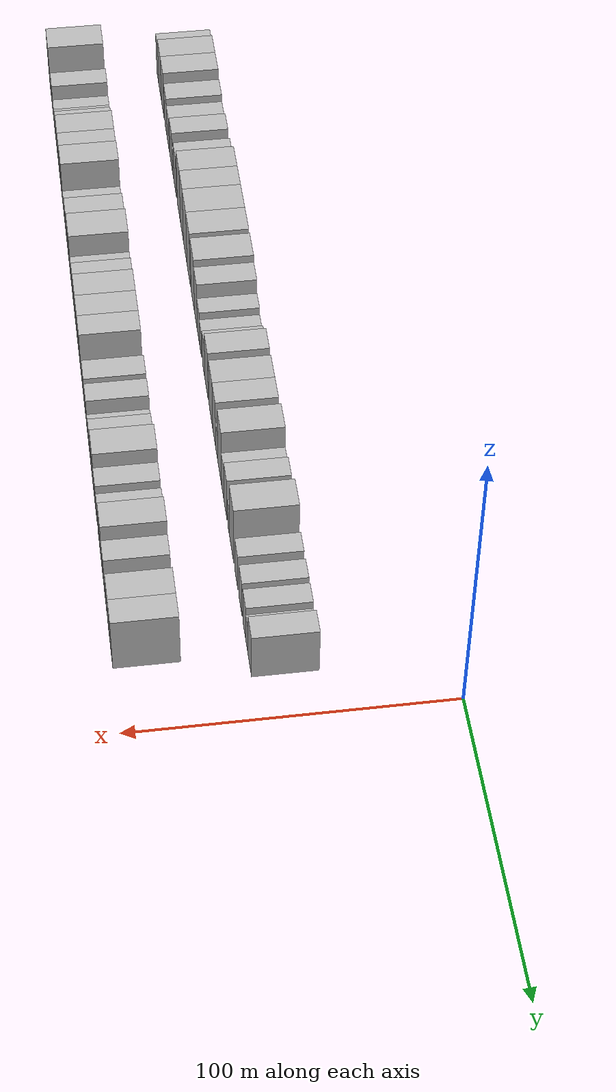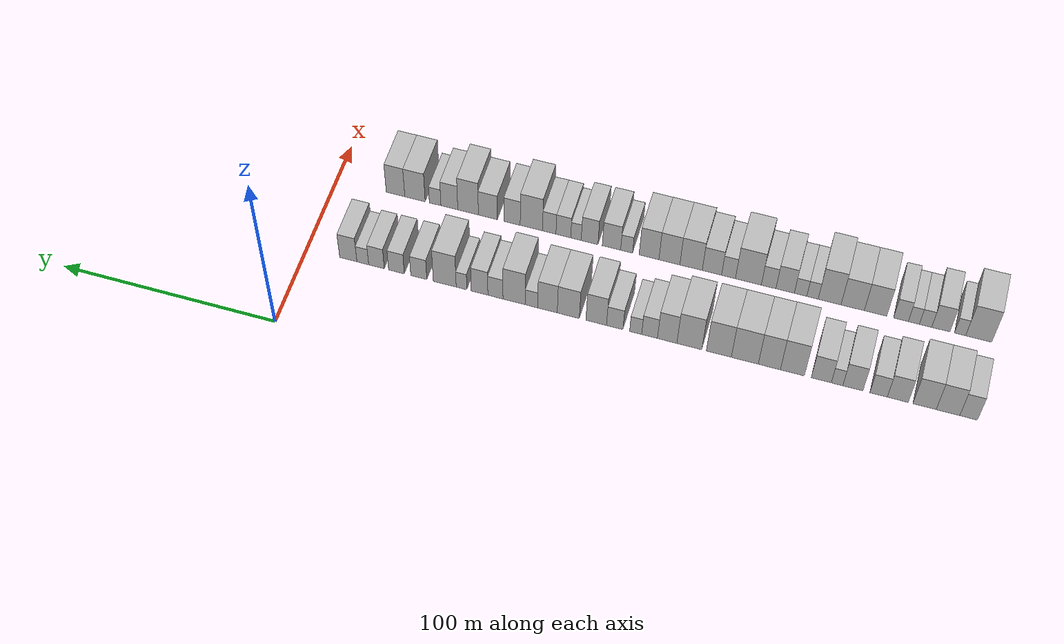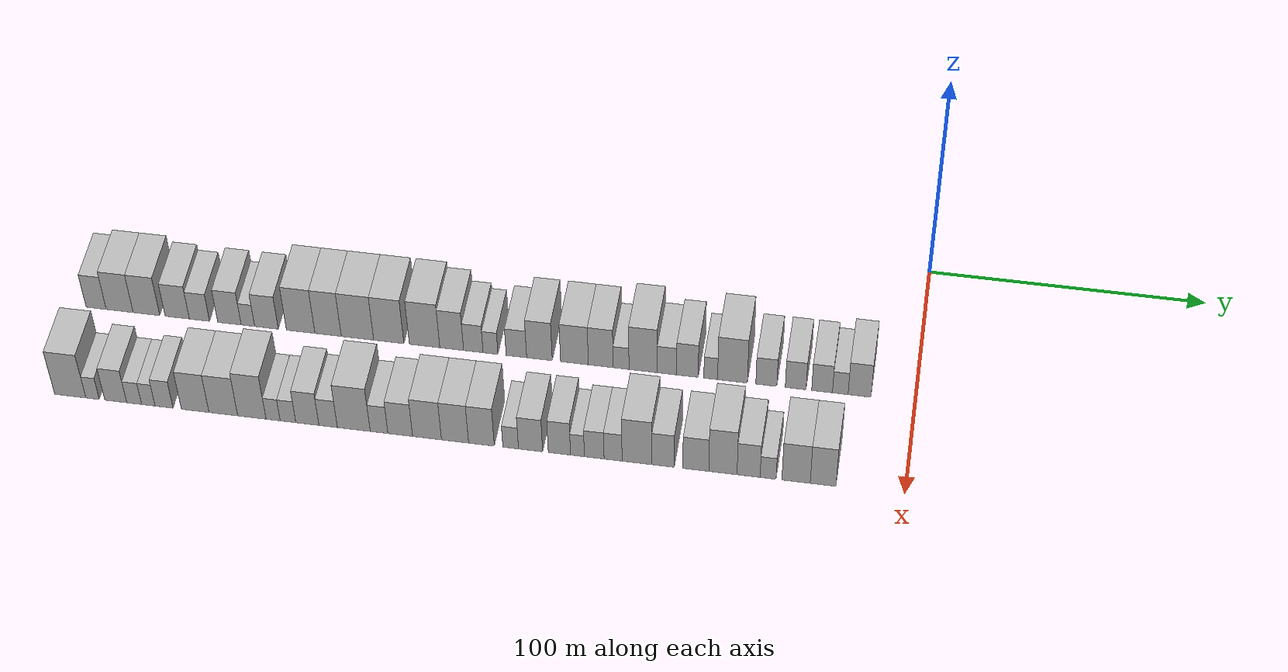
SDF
<sdf version="1.6">
 <world name="default">
  <model name="building_1">
   <static>1</static>
   <pose>50.0000 -296.2681 0 0.000000 0.000000 0.000000</pose>
   <link name="link">
    <pose>0 0 9.00 0 0 0</pose>
    <collision name="collision"><geometry><box><size>20.0000 7.4637 18.0000</size></box></geometry></collision>
    <visual name="visual">
     <cast_shadows>0</cast_shadows>
     <geometry><box><size>20.0000 7.4637 18.0000</size></box></geometry>
     <material>
      <script>
       <uri>model://HANNAS_wall/materials/scripts</uri>
       <uri>model://HANNAS_wall/materials/textures</uri>
       <name>vrc/HANNAS_wall</name>
      </script>
     </material>
    </visual>
   </link>
  </model>
  <model name="building_2">
   <static>1</static>
   <pose>50.0000 -287.5486 0 0.000000 0.000000 0.000000</pose>
   <link name="link">
    <pose>0 0 10.50 0 0 0</pose>
    <collision name="collision"><geometry><box><size>20.0000 9.9753 21.0000</size></box></geometry></collision>
    <visual name="visual">
     <cast_shadows>0</cast_shadows>
     <geometry><box><size>20.0000 9.9753 21.0000</size></box></geometry>
     <material>
      <script>
       <uri>model://HANNAS_wall/materials/scripts</uri>
       <uri>model://HANNAS_wall/materials/textures</uri>
       <name>vrc/HANNAS_wall</name>
      </script>
     </material>
    </visual>
   </link>
  </model>
  <model name="building_3">
   <static>1</static>
   <pose>50.0000 -277.6109 0 0.000000 0.000000 0.000000</pose>
   <link name="link">
    <pose>0 0 10.50 0 0 0</pose>
    <collision name="collision"><geometry><box><size>20.0000 9.9003 21.0000</size></box></geometry></collision>
    <visual name="visual">
     <cast_shadows>0</cast_shadows>
     <geometry><box><size>20.0000 9.9003 21.0000</size></box></geometry>
     <material>
      <script>
       <uri>model://HANNAS_wall/materials/scripts</uri>
       <uri>model://HANNAS_wall/materials/textures</uri>
       <name>vrc/HANNAS_wall</name>
      </script>
     </material>
    </visual>
   </link>
  </model>
  <model name="building_4">
   <static>1</static>
   <pose>50.0000 -266.2000 0 0.000000 0.000000 0.000000</pose>
   <link name="link">
    <pose>0 0 9.00 0 0 0</pose>
    <collision name="collision"><geometry><box><size>20.0000 8.9215 18.0000</size></box></geometry></collision>
    <visual name="visual">
     <cast_shadows>0</cast_shadows>
     <geometry><box><size>20.0000 8.9215 18.0000</size></box></geometry>
     <material>
      <script>
       <uri>model://HANNAS_wall/materials/scripts</uri>
       <uri>model://HANNAS_wall/materials/textures</uri>
       <name>vrc/HANNAS_wall</name>
      </script>
     </material>
    </visual>
   </link>
  </model>
  <model name="building_5">
   <static>1</static>
   <pose>50.0000 -258.0020 0 0.000000 0.000000 0.000000</pose>
   <link name="link">
    <pose>0 0 7.50 0 0 0</pose>
    <collision name="collision"><geometry><box><size>20.0000 7.4744 15.0000</size></box></geometry></collision>
    <visual name="visual">
     <cast_shadows>0</cast_shadows>
     <geometry><box><size>20.0000 7.4744 15.0000</size></box></geometry>
     <material>
      <script>
       <uri>model://HANNAS_wall/materials/scripts</uri>
       <uri>model://HANNAS_wall/materials/textures</uri>
       <name>vrc/HANNAS_wall</name>
      </script>
     </material>
    </visual>
   </link>
  </model>
  <model name="building_6">
   <static>1</static>
   <pose>50.0000 -246.9356 0 0.000000 0.000000 0.000000</pose>
   <link name="link">
    <pose>0 0 9.00 0 0 0</pose>
    <collision name="collision"><geometry><box><size>20.0000 8.6585 18.0000</size></box></geometry></collision>
    <visual name="visual">
     <cast_shadows>0</cast_shadows>
     <geometry><box><size>20.0000 8.6585 18.0000</size></box></geometry>
     <material>
      <script>
       <uri>model://HANNAS_wall/materials/scripts</uri>
       <uri>model://HANNAS_wall/materials/textures</uri>
       <name>vrc/HANNAS_wall</name>
      </script>
     </material>
    </visual>
   </link>
  </model>
  <model name="building_7">
   <static>1</static>
   <pose>50.0000 -240.1300 0 0.000000 0.000000 0.000000</pose>
   <link name="link">
    <pose>0 0 6.00 0 0 0</pose>
    <collision name="collision"><geometry><box><size>20.0000 4.9528 12.0000</size></box></geometry></collision>
    <visual name="visual">
     <cast_shadows>0</cast_shadows>
     <geometry><box><size>20.0000 4.9528 12.0000</size></box></geometry>
     <material>
      <script>
       <uri>model://HANNAS_wall/materials/scripts</uri>
       <uri>model://HANNAS_wall/materials/textures</uri>
       <name>vrc/HANNAS_wall</name>
      </script>
     </material>
    </visual>
   </link>
  </model>
  <model name="building_8">
   <static>1</static>
   <pose>50.0000 -233.3050 0 0.000000 0.000000 0.000000</pose>
   <link name="link">
    <pose>0 0 9.00 0 0 0</pose>
    <collision name="collision"><geometry><box><size>20.0000 8.6971 18.0000</size></box></geometry></collision>
    <visual name="visual">
     <cast_shadows>0</cast_shadows>
     <geometry><box><size>20.0000 8.6971 18.0000</size></box></geometry>
     <material>
      <script>
       <uri>model://HANNAS_wall/materials/scripts</uri>
       <uri>model://HANNAS_wall/materials/textures</uri>
       <name>vrc/HANNAS_wall</name>
      </script>
     </material>
    </visual>
   </link>
  </model>
  <model name="building_9">
   <static>1</static>
   <pose>50.0000 -220.7380 0 0.000000 0.000000 0.000000</pose>
   <link name="link">
    <pose>0 0 12.00 0 0 0</pose>
    <collision name="collision"><geometry><box><size>20.0000 10.4370 24.0000</size></box></geometry></collision>
    <visual name="visual">
     <cast_shadows>0</cast_shadows>
     <geometry><box><size>20.0000 10.4370 24.0000</size></box></geometry>
     <material>
      <script>
       <uri>model://HANNAS_wall/materials/scripts</uri>
       <uri>model://HANNAS_wall/materials/textures</uri>
       <name>vrc/HANNAS_wall</name>
      </script>
     </material>
    </visual>
   </link>
  </model>
  <model name="building_10">
   <static>1</static>
   <pose>50.0000 -210.6921 0 0.000000 0.000000 0.000000</pose>
   <link name="link">
    <pose>0 0 12.00 0 0 0</pose>
    <collision name="collision"><geometry><box><size>20.0000 9.6547 24.0000</size></box></geometry></collision>
    <visual name="visual">
     <cast_shadows>0</cast_shadows>
     <geometry><box><size>20.0000 9.6547 24.0000</size></box></geometry>
     <material>
      <script>
       <uri>model://HANNAS_wall/materials/scripts</uri>
       <uri>model://HANNAS_wall/materials/textures</uri>
       <name>vrc/HANNAS_wall</name>
      </script>
     </material>
    </visual>
   </link>
  </model>
  <model name="building_11">
   <static>1</static>
   <pose>50.0000 -199.9484 0 0.000000 0.000000 0.000000</pose>
   <link name="link">
    <pose>0 0 12.00 0 0 0</pose>
    <collision name="collision"><geometry><box><size>20.0000 11.8328 24.0000</size></box></geometry></collision>
    <visual name="visual">
     <cast_shadows>0</cast_shadows>
     <geometry><box><size>20.0000 11.8328 24.0000</size></box></geometry>
     <material>
      <script>
       <uri>model://HANNAS_wall/materials/scripts</uri>
       <uri>model://HANNAS_wall/materials/textures</uri>
       <name>vrc/HANNAS_wall</name>
      </script>
     </material>
    </visual>
   </link>
  </model>
  <model name="building_12">
   <static>1</static>
   <pose>50.0000 -188.5231 0 0.000000 0.000000 0.000000</pose>
   <link name="link">
    <pose>0 0 12.00 0 0 0</pose>
    <collision name="collision"><geometry><box><size>20.0000 11.0177 24.0000</size></box></geometry></collision>
    <visual name="visual">
     <cast_shadows>0</cast_shadows>
     <geometry><box><size>20.0000 11.0177 24.0000</size></box></geometry>
     <material>
      <script>
       <uri>model://HANNAS_wall/materials/scripts</uri>
       <uri>model://HANNAS_wall/materials/textures</uri>
       <name>vrc/HANNAS_wall</name>
      </script>
     </material>
    </visual>
   </link>
  </model>
  <model name="building_13">
   <static>1</static>
   <pose>50.0000 -175.4865 0 0.000000 0.000000 0.000000</pose>
   <link name="link">
    <pose>0 0 12.00 0 0 0</pose>
    <collision name="collision"><geometry><box><size>20.0000 11.0557 24.0000</size></box></geometry></collision>
    <visual name="visual">
     <cast_shadows>0</cast_shadows>
     <geometry><box><size>20.0000 11.0557 24.0000</size></box></geometry>
     <material>
      <script>
       <uri>model://HANNAS_wall/materials/scripts</uri>
       <uri>model://HANNAS_wall/materials/textures</uri>
       <name>vrc/HANNAS_wall</name>
      </script>
     </material>
    </visual>
   </link>
  </model>
  <model name="building_14">
   <static>1</static>
   <pose>50.0000 -165.6355 0 0.000000 0.000000 0.000000</pose>
   <link name="link">
    <pose>0 0 10.50 0 0 0</pose>
    <collision name="collision"><geometry><box><size>20.0000 8.6461 21.0000</size></box></geometry></collision>
    <visual name="visual">
     <cast_shadows>0</cast_shadows>
     <geometry><box><size>20.0000 8.6461 21.0000</size></box></geometry>
     <material>
      <script>
       <uri>model://HANNAS_wall/materials/scripts</uri>
       <uri>model://HANNAS_wall/materials/textures</uri>
       <name>vrc/HANNAS_wall</name>
      </script>
     </material>
    </visual>
   </link>
  </model>
  <model name="building_15">
   <static>1</static>
   <pose>50.0000 -157.7900 0 0.000000 0.000000 0.000000</pose>
   <link name="link">
    <pose>0 0 7.50 0 0 0</pose>
    <collision name="collision"><geometry><box><size>20.0000 7.0449 15.0000</size></box></geometry></collision>
    <visual name="visual">
     <cast_shadows>0</cast_shadows>
     <geometry><box><size>20.0000 7.0449 15.0000</size></box></geometry>
     <material>
      <script>
       <uri>model://HANNAS_wall/materials/scripts</uri>
       <uri>model://HANNAS_wall/materials/textures</uri>
       <name>vrc/HANNAS_wall</name>
      </script>
     </material>
    </visual>
   </link>
  </model>
  <model name="building_16">
   <static>1</static>
   <pose>50.0000 -151.5792 0 0.000000 0.000000 0.000000</pose>
   <link name="link">
    <pose>0 0 6.00 0 0 0</pose>
    <collision name="collision"><geometry><box><size>20.0000 5.3768 12.0000</size></box></geometry></collision>
    <visual name="visual">
     <cast_shadows>0</cast_shadows>
     <geometry><box><size>20.0000 5.3768 12.0000</size></box></geometry>
     <material>
      <script>
       <uri>model://HANNAS_wall/materials/scripts</uri>
       <uri>model://HANNAS_wall/materials/textures</uri>
       <name>vrc/HANNAS_wall</name>
      </script>
     </material>
    </visual>
   </link>
  </model>
  <model name="building_17">
   <static>1</static>
   <pose>50.0000 -142.1929 0 0.000000 0.000000 0.000000</pose>
   <link name="link">
    <pose>0 0 7.50 0 0 0</pose>
    <collision name="collision"><geometry><box><size>20.0000 7.3958 15.0000</size></box></geometry></collision>
    <visual name="visual">
     <cast_shadows>0</cast_shadows>
     <geometry><box><size>20.0000 7.3958 15.0000</size></box></geometry>
     <material>
      <script>
       <uri>model://HANNAS_wall/materials/scripts</uri>
       <uri>model://HANNAS_wall/materials/textures</uri>
       <name>vrc/HANNAS_wall</name>
      </script>
     </material>
    </visual>
   </link>
  </model>
  <model name="building_18">
   <static>1</static>
   <pose>50.0000 -133.8683 0 0.000000 0.000000 0.000000</pose>
   <link name="link">
    <pose>0 0 10.50 0 0 0</pose>
    <collision name="collision"><geometry><box><size>20.0000 9.2536 21.0000</size></box></geometry></collision>
    <visual name="visual">
     <cast_shadows>0</cast_shadows>
     <geometry><box><size>20.0000 9.2536 21.0000</size></box></geometry>
     <material>
      <script>
       <uri>model://HANNAS_wall/materials/scripts</uri>
       <uri>model://HANNAS_wall/materials/textures</uri>
       <name>vrc/HANNAS_wall</name>
      </script>
     </material>
    </visual>
   </link>
  </model>
  <model name="building_19">
   <static>1</static>
   <pose>50.0000 -121.2413 0 0.000000 0.000000 0.000000</pose>
   <link name="link">
    <pose>0 0 10.50 0 0 0</pose>
    <collision name="collision"><geometry><box><size>20.0000 10.0004 21.0000</size></box></geometry></collision>
    <visual name="visual">
     <cast_shadows>0</cast_shadows>
     <geometry><box><size>20.0000 10.0004 21.0000</size></box></geometry>
     <material>
      <script>
       <uri>model://HANNAS_wall/materials/scripts</uri>
       <uri>model://HANNAS_wall/materials/textures</uri>
       <name>vrc/HANNAS_wall</name>
      </script>
     </material>
    </visual>
   </link>
  </model>
  <model name="building_20">
   <static>1</static>
   <pose>50.0000 -111.7698 0 0.000000 0.000000 0.000000</pose>
   <link name="link">
    <pose>0 0 10.50 0 0 0</pose>
    <collision name="collision"><geometry><box><size>20.0000 8.9425 21.0000</size></box></geometry></collision>
    <visual name="visual">
     <cast_shadows>0</cast_shadows>
     <geometry><box><size>20.0000 8.9425 21.0000</size></box></geometry>
     <material>
      <script>
       <uri>model://HANNAS_wall/materials/scripts</uri>
       <uri>model://HANNAS_wall/materials/textures</uri>
       <name>vrc/HANNAS_wall</name>
      </script>
     </material>
    </visual>
   </link>
  </model>
  <model name="building_21">
   <static>1</static>
   <pose>50.0000 -104.4695 0 0.000000 0.000000 0.000000</pose>
   <link name="link">
    <pose>0 0 6.00 0 0 0</pose>
    <collision name="collision"><geometry><box><size>20.0000 5.6582 12.0000</size></box></geometry></collision>
    <visual name="visual">
     <cast_shadows>0</cast_shadows>
     <geometry><box><size>20.0000 5.6582 12.0000</size></box></geometry>
     <material>
      <script>
       <uri>model://HANNAS_wall/materials/scripts</uri>
       <uri>model://HANNAS_wall/materials/textures</uri>
       <name>vrc/HANNAS_wall</name>
      </script>
     </material>
    </visual>
   </link>
  </model>
  <model name="building_22">
   <static>1</static>
   <pose>50.0000 -96.5755 0 0.000000 0.000000 0.000000</pose>
   <link name="link">
    <pose>0 0 12.00 0 0 0</pose>
    <collision name="collision"><geometry><box><size>20.0000 10.1298 24.0000</size></box></geometry></collision>
    <visual name="visual">
     <cast_shadows>0</cast_shadows>
     <geometry><box><size>20.0000 10.1298 24.0000</size></box></geometry>
     <material>
      <script>
       <uri>model://HANNAS_wall/materials/scripts</uri>
       <uri>model://HANNAS_wall/materials/textures</uri>
       <name>vrc/HANNAS_wall</name>
      </script>
     </material>
    </visual>
   </link>
  </model>
  <model name="building_23">
   <static>1</static>
   <pose>50.0000 -88.0419 0 0.000000 0.000000 0.000000</pose>
   <link name="link">
    <pose>0 0 7.50 0 0 0</pose>
    <collision name="collision"><geometry><box><size>20.0000 6.9375 15.0000</size></box></geometry></collision>
    <visual name="visual">
     <cast_shadows>0</cast_shadows>
     <geometry><box><size>20.0000 6.9375 15.0000</size></box></geometry>
     <material>
      <script>
       <uri>model://HANNAS_wall/materials/scripts</uri>
       <uri>model://HANNAS_wall/materials/textures</uri>
       <name>vrc/HANNAS_wall</name>
      </script>
     </material>
    </visual>
   </link>
  </model>
  <model name="building_24">
   <static>1</static>
   <pose>50.0000 -80.7209 0 0.000000 0.000000 0.000000</pose>
   <link name="link">
    <pose>0 0 9.00 0 0 0</pose>
    <collision name="collision"><geometry><box><size>20.0000 7.7043 18.0000</size></box></geometry></collision>
    <visual name="visual">
     <cast_shadows>0</cast_shadows>
     <geometry><box><size>20.0000 7.7043 18.0000</size></box></geometry>
     <material>
      <script>
       <uri>model://HANNAS_wall/materials/scripts</uri>
       <uri>model://HANNAS_wall/materials/textures</uri>
       <name>vrc/HANNAS_wall</name>
      </script>
     </material>
    </visual>
   </link>
  </model>
  <model name="building_25">
   <static>1</static>
   <pose>50.0000 -72.4172 0 0.000000 0.000000 0.000000</pose>
   <link name="link">
    <pose>0 0 6.00 0 0 0</pose>
    <collision name="collision"><geometry><box><size>20.0000 4.9032 12.0000</size></box></geometry></collision>
    <visual name="visual">
     <cast_shadows>0</cast_shadows>
     <geometry><box><size>20.0000 4.9032 12.0000</size></box></geometry>
     <material>
      <script>
       <uri>model://HANNAS_wall/materials/scripts</uri>
       <uri>model://HANNAS_wall/materials/textures</uri>
       <name>vrc/HANNAS_wall</name>
      </script>
     </material>
    </visual>
   </link>
  </model>
  <model name="building_26">
   <static>1</static>
   <pose>50.0000 -64.6622 0 0.000000 0.000000 0.000000</pose>
   <link name="link">
    <pose>0 0 12.00 0 0 0</pose>
    <collision name="collision"><geometry><box><size>20.0000 10.6067 24.0000</size></box></geometry></collision>
    <visual name="visual">
     <cast_shadows>0</cast_shadows>
     <geometry><box><size>20.0000 10.6067 24.0000</size></box></geometry>
     <material>
      <script>
       <uri>model://HANNAS_wall/materials/scripts</uri>
       <uri>model://HANNAS_wall/materials/textures</uri>
       <name>vrc/HANNAS_wall</name>
      </script>
     </material>
    </visual>
   </link>
  </model>
  <model name="building_27">
   <static>1</static>
   <pose>50.0000 -52.6284 0 0.000000 0.000000 0.000000</pose>
   <link name="link">
    <pose>0 0 7.50 0 0 0</pose>
    <collision name="collision"><geometry><box><size>20.0000 7.4610 15.0000</size></box></geometry></collision>
    <visual name="visual">
     <cast_shadows>0</cast_shadows>
     <geometry><box><size>20.0000 7.4610 15.0000</size></box></geometry>
     <material>
      <script>
       <uri>model://HANNAS_wall/materials/scripts</uri>
       <uri>model://HANNAS_wall/materials/textures</uri>
       <name>vrc/HANNAS_wall</name>
      </script>
     </material>
    </visual>
   </link>
  </model>
  <model name="building_28">
   <static>1</static>
   <pose>50.0000 -42.2140 0 0.000000 0.000000 0.000000</pose>
   <link name="link">
    <pose>0 0 7.50 0 0 0</pose>
    <collision name="collision"><geometry><box><size>20.0000 7.3677 15.0000</size></box></geometry></collision>
    <visual name="visual">
     <cast_shadows>0</cast_shadows>
     <geometry><box><size>20.0000 7.3677 15.0000</size></box></geometry>
     <material>
      <script>
       <uri>model://HANNAS_wall/materials/scripts</uri>
       <uri>model://HANNAS_wall/materials/textures</uri>
       <name>vrc/HANNAS_wall</name>
      </script>
     </material>
    </visual>
   </link>
  </model>
  <model name="building_29">
   <static>1</static>
   <pose>50.0000 -32.8546 0 0.000000 0.000000 0.000000</pose>
   <link name="link">
    <pose>0 0 7.50 0 0 0</pose>
    <collision name="collision"><geometry><box><size>20.0000 7.3512 15.0000</size></box></geometry></collision>
    <visual name="visual">
     <cast_shadows>0</cast_shadows>
     <geometry><box><size>20.0000 7.3512 15.0000</size></box></geometry>
     <material>
      <script>
       <uri>model://HANNAS_wall/materials/scripts</uri>
       <uri>model://HANNAS_wall/materials/textures</uri>
       <name>vrc/HANNAS_wall</name>
      </script>
     </material>
    </visual>
   </link>
  </model>
  <model name="building_30">
   <static>1</static>
   <pose>50.0000 -26.4190 0 0.000000 0.000000 0.000000</pose>
   <link name="link">
    <pose>0 0 6.00 0 0 0</pose>
    <collision name="collision"><geometry><box><size>20.0000 5.5198 12.0000</size></box></geometry></collision>
    <visual name="visual">
     <cast_shadows>0</cast_shadows>
     <geometry><box><size>20.0000 5.5198 12.0000</size></box></geometry>
     <material>
      <script>
       <uri>model://HANNAS_wall/materials/scripts</uri>
       <uri>model://HANNAS_wall/materials/textures</uri>
       <name>vrc/HANNAS_wall</name>
      </script>
     </material>
    </visual>
   </link>
  </model>
  <model name="building_31">
   <static>1</static>
   <pose>50.0000 -19.6068 0 0.000000 0.000000 0.000000</pose>
   <link name="link">
    <pose>0 0 9.00 0 0 0</pose>
    <collision name="collision"><geometry><box><size>20.0000 8.1047 18.0000</size></box></geometry></collision>
    <visual name="visual">
     <cast_shadows>0</cast_shadows>
     <geometry><box><size>20.0000 8.1047 18.0000</size></box></geometry>
     <material>
      <script>
       <uri>model://HANNAS_wall/materials/scripts</uri>
       <uri>model://HANNAS_wall/materials/textures</uri>
       <name>vrc/HANNAS_wall</name>
      </script>
     </material>
    </visual>
   </link>
  </model>
  <model name="building_59">
   <static>1</static>
   <pose>90.0000 -294.3454 0 0.000000 0.000000 0.000000</pose>
   <link name="link">
    <pose>0 0 12.00 0 0 0</pose>
    <collision name="collision"><geometry><box><size>20.0000 11.3092 24.0000</size></box></geometry></collision>
    <visual name="visual">
     <cast_shadows>0</cast_shadows>
     <geometry><box><size>20.0000 11.3092 24.0000</size></box></geometry>
     <material>
      <script>
       <uri>model://HANNAS_wall/materials/scripts</uri>
       <uri>model://HANNAS_wall/materials/textures</uri>
       <name>vrc/HANNAS_wall</name>
      </script>
     </material>
    </visual>
   </link>
  </model>
  <model name="building_60">
   <static>1</static>
   <pose>90.0000 -286.2784 0 0.000000 0.000000 0.000000</pose>
   <link name="link">
    <pose>0 0 6.00 0 0 0</pose>
    <collision name="collision"><geometry><box><size>20.0000 4.8248 12.0000</size></box></geometry></collision>
    <visual name="visual">
     <cast_shadows>0</cast_shadows>
     <geometry><box><size>20.0000 4.8248 12.0000</size></box></geometry>
     <material>
      <script>
       <uri>model://HANNAS_wall/materials/scripts</uri>
       <uri>model://HANNAS_wall/materials/textures</uri>
       <name>vrc/HANNAS_wall</name>
      </script>
     </material>
    </visual>
   </link>
  </model>
  <model name="building_61">
   <static>1</static>
   <pose>90.0000 -277.8931 0 0.000000 0.000000 0.000000</pose>
   <link name="link">
    <pose>0 0 9.00 0 0 0</pose>
    <collision name="collision"><geometry><box><size>20.0000 7.9457 18.0000</size></box></geometry></collision>
    <visual name="visual">
     <cast_shadows>0</cast_shadows>
     <geometry><box><size>20.0000 7.9457 18.0000</size></box></geometry>
     <material>
      <script>
       <uri>model://HANNAS_wall/materials/scripts</uri>
       <uri>model://HANNAS_wall/materials/textures</uri>
       <name>vrc/HANNAS_wall</name>
      </script>
     </material>
    </visual>
   </link>
  </model>
  <model name="building_62">
   <static>1</static>
   <pose>90.0000 -271.2342 0 0.000000 0.000000 0.000000</pose>
   <link name="link">
    <pose>0 0 6.00 0 0 0</pose>
    <collision name="collision"><geometry><box><size>20.0000 5.3722 12.0000</size></box></geometry></collision>
    <visual name="visual">
     <cast_shadows>0</cast_shadows>
     <geometry><box><size>20.0000 5.3722 12.0000</size></box></geometry>
     <material>
      <script>
       <uri>model://HANNAS_wall/materials/scripts</uri>
       <uri>model://HANNAS_wall/materials/textures</uri>
       <name>vrc/HANNAS_wall</name>
      </script>
     </material>
    </visual>
   </link>
  </model>
  <model name="building_63">
   <static>1</static>
   <pose>90.0000 -266.1261 0 0.000000 0.000000 0.000000</pose>
   <link name="link">
    <pose>0 0 6.00 0 0 0</pose>
    <collision name="collision"><geometry><box><size>20.0000 4.8439 12.0000</size></box></geometry></collision>
    <visual name="visual">
     <cast_shadows>0</cast_shadows>
     <geometry><box><size>20.0000 4.8439 12.0000</size></box></geometry>
     <material>
      <script>
       <uri>model://HANNAS_wall/materials/scripts</uri>
       <uri>model://HANNAS_wall/materials/textures</uri>
       <name>vrc/HANNAS_wall</name>
      </script>
     </material>
    </visual>
   </link>
  </model>
  <model name="building_64">
   <static>1</static>
   <pose>90.0000 -260.4621 0 0.000000 0.000000 0.000000</pose>
   <link name="link">
    <pose>0 0 7.50 0 0 0</pose>
    <collision name="collision"><geometry><box><size>20.0000 6.4842 15.0000</size></box></geometry></collision>
    <visual name="visual">
     <cast_shadows>0</cast_shadows>
     <geometry><box><size>20.0000 6.4842 15.0000</size></box></geometry>
     <material>
      <script>
       <uri>model://HANNAS_wall/materials/scripts</uri>
       <uri>model://HANNAS_wall/materials/textures</uri>
       <name>vrc/HANNAS_wall</name>
      </script>
     </material>
    </visual>
   </link>
  </model>
  <model name="building_65">
   <static>1</static>
   <pose>90.0000 -249.2604 0 0.000000 0.000000 0.000000</pose>
   <link name="link">
    <pose>0 0 10.50 0 0 0</pose>
    <collision name="collision"><geometry><box><size>20.0000 9.9192 21.0000</size></box></geometry></collision>
    <visual name="visual">
     <cast_shadows>0</cast_shadows>
     <geometry><box><size>20.0000 9.9192 21.0000</size></box></geometry>
     <material>
      <script>
       <uri>model://HANNAS_wall/materials/scripts</uri>
       <uri>model://HANNAS_wall/materials/textures</uri>
       <name>vrc/HANNAS_wall</name>
      </script>
     </material>
    </visual>
   </link>
  </model>
  <model name="building_66">
   <static>1</static>
   <pose>90.0000 -239.1372 0 0.000000 0.000000 0.000000</pose>
   <link name="link">
    <pose>0 0 10.50 0 0 0</pose>
    <collision name="collision"><geometry><box><size>20.0000 10.3270 21.0000</size></box></geometry></collision>
    <visual name="visual">
     <cast_shadows>0</cast_shadows>
     <geometry><box><size>20.0000 10.3270 21.0000</size></box></geometry>
     <material>
      <script>
       <uri>model://HANNAS_wall/materials/scripts</uri>
       <uri>model://HANNAS_wall/materials/textures</uri>
       <name>vrc/HANNAS_wall</name>
      </script>
     </material>
    </visual>
   </link>
  </model>
  <model name="building_67">
   <static>1</static>
   <pose>90.0000 -228.8981 0 0.000000 0.000000 0.000000</pose>
   <link name="link">
    <pose>0 0 12.00 0 0 0</pose>
    <collision name="collision"><geometry><box><size>20.0000 10.1513 24.0000</size></box></geometry></collision>
    <visual name="visual">
     <cast_shadows>0</cast_shadows>
     <geometry><box><size>20.0000 10.1513 24.0000</size></box></geometry>
     <material>
      <script>
       <uri>model://HANNAS_wall/materials/scripts</uri>
       <uri>model://HANNAS_wall/materials/textures</uri>
       <name>vrc/HANNAS_wall</name>
      </script>
     </material>
    </visual>
   </link>
  </model>
  <model name="building_68">
   <static>1</static>
   <pose>90.0000 -221.3046 0 0.000000 0.000000 0.000000</pose>
   <link name="link">
    <pose>0 0 6.00 0 0 0</pose>
    <collision name="collision"><geometry><box><size>20.0000 5.0357 12.0000</size></box></geometry></collision>
    <visual name="visual">
     <cast_shadows>0</cast_shadows>
     <geometry><box><size>20.0000 5.0357 12.0000</size></box></geometry>
     <material>
      <script>
       <uri>model://HANNAS_wall/materials/scripts</uri>
       <uri>model://HANNAS_wall/materials/textures</uri>
       <name>vrc/HANNAS_wall</name>
      </script>
     </material>
    </visual>
   </link>
  </model>
  <model name="building_69">
   <static>1</static>
   <pose>90.0000 -215.9869 0 0.000000 0.000000 0.000000</pose>
   <link name="link">
    <pose>0 0 6.00 0 0 0</pose>
    <collision name="collision"><geometry><box><size>20.0000 5.5996 12.0000</size></box></geometry></collision>
    <visual name="visual">
     <cast_shadows>0</cast_shadows>
     <geometry><box><size>20.0000 5.5996 12.0000</size></box></geometry>
     <material>
      <script>
       <uri>model://HANNAS_wall/materials/scripts</uri>
       <uri>model://HANNAS_wall/materials/textures</uri>
       <name>vrc/HANNAS_wall</name>
      </script>
     </material>
    </visual>
   </link>
  </model>
  <model name="building_70">
   <static>1</static>
   <pose>90.0000 -209.0673 0 0.000000 0.000000 0.000000</pose>
   <link name="link">
    <pose>0 0 9.00 0 0 0</pose>
    <collision name="collision"><geometry><box><size>20.0000 8.2397 18.0000</size></box></geometry></collision>
    <visual name="visual">
     <cast_shadows>0</cast_shadows>
     <geometry><box><size>20.0000 8.2397 18.0000</size></box></geometry>
     <material>
      <script>
       <uri>model://HANNAS_wall/materials/scripts</uri>
       <uri>model://HANNAS_wall/materials/textures</uri>
       <name>vrc/HANNAS_wall</name>
      </script>
     </material>
    </visual>
   </link>
  </model>
  <model name="building_71">
   <static>1</static>
   <pose>90.0000 -201.6561 0 0.000000 0.000000 0.000000</pose>
   <link name="link">
    <pose>0 0 7.50 0 0 0</pose>
    <collision name="collision"><geometry><box><size>20.0000 6.5826 15.0000</size></box></geometry></collision>
    <visual name="visual">
     <cast_shadows>0</cast_shadows>
     <geometry><box><size>20.0000 6.5826 15.0000</size></box></geometry>
     <material>
      <script>
       <uri>model://HANNAS_wall/materials/scripts</uri>
       <uri>model://HANNAS_wall/materials/textures</uri>
       <name>vrc/HANNAS_wall</name>
      </script>
     </material>
    </visual>
   </link>
  </model>
  <model name="building_72">
   <static>1</static>
   <pose>90.0000 -192.5179 0 0.000000 0.000000 0.000000</pose>
   <link name="link">
    <pose>0 0 12.00 0 0 0</pose>
    <collision name="collision"><geometry><box><size>20.0000 11.6938 24.0000</size></box></geometry></collision>
    <visual name="visual">
     <cast_shadows>0</cast_shadows>
     <geometry><box><size>20.0000 11.6938 24.0000</size></box></geometry>
     <material>
      <script>
       <uri>model://HANNAS_wall/materials/scripts</uri>
       <uri>model://HANNAS_wall/materials/textures</uri>
       <name>vrc/HANNAS_wall</name>
      </script>
     </material>
    </visual>
   </link>
  </model>
  <model name="building_73">
   <static>1</static>
   <pose>90.0000 -183.5348 0 0.000000 0.000000 0.000000</pose>
   <link name="link">
    <pose>0 0 7.50 0 0 0</pose>
    <collision name="collision"><geometry><box><size>20.0000 6.2725 15.0000</size></box></geometry></collision>
    <visual name="visual">
     <cast_shadows>0</cast_shadows>
     <geometry><box><size>20.0000 6.2725 15.0000</size></box></geometry>
     <material>
      <script>
       <uri>model://HANNAS_wall/materials/scripts</uri>
       <uri>model://HANNAS_wall/materials/textures</uri>
       <name>vrc/HANNAS_wall</name>
      </script>
     </material>
    </visual>
   </link>
  </model>
  <model name="building_74">
   <static>1</static>
   <pose>90.0000 -176.0171 0 0.000000 0.000000 0.000000</pose>
   <link name="link">
    <pose>0 0 9.00 0 0 0</pose>
    <collision name="collision"><geometry><box><size>20.0000 8.7630 18.0000</size></box></geometry></collision>
    <visual name="visual">
     <cast_shadows>0</cast_shadows>
     <geometry><box><size>20.0000 8.7630 18.0000</size></box></geometry>
     <material>
      <script>
       <uri>model://HANNAS_wall/materials/scripts</uri>
       <uri>model://HANNAS_wall/materials/textures</uri>
       <name>vrc/HANNAS_wall</name>
      </script>
     </material>
    </visual>
   </link>
  </model>
  <model name="building_75">
   <static>1</static>
   <pose>90.0000 -166.5243 0 0.000000 0.000000 0.000000</pose>
   <link name="link">
    <pose>0 0 10.50 0 0 0</pose>
    <collision name="collision"><geometry><box><size>20.0000 10.2226 21.0000</size></box></geometry></collision>
    <visual name="visual">
     <cast_shadows>0</cast_shadows>
     <geometry><box><size>20.0000 10.2226 21.0000</size></box></geometry>
     <material>
      <script>
       <uri>model://HANNAS_wall/materials/scripts</uri>
       <uri>model://HANNAS_wall/materials/textures</uri>
       <name>vrc/HANNAS_wall</name>
      </script>
     </material>
    </visual>
   </link>
  </model>
  <model name="building_76">
   <static>1</static>
   <pose>90.0000 -156.6220 0 0.000000 0.000000 0.000000</pose>
   <link name="link">
    <pose>0 0 10.50 0 0 0</pose>
    <collision name="collision"><geometry><box><size>20.0000 9.5821 21.0000</size></box></geometry></collision>
    <visual name="visual">
     <cast_shadows>0</cast_shadows>
     <geometry><box><size>20.0000 9.5821 21.0000</size></box></geometry>
     <material>
      <script>
       <uri>model://HANNAS_wall/materials/scripts</uri>
       <uri>model://HANNAS_wall/materials/textures</uri>
       <name>vrc/HANNAS_wall</name>
      </script>
     </material>
    </visual>
   </link>
  </model>
  <model name="building_77">
   <static>1</static>
   <pose>90.0000 -147.2910 0 0.000000 0.000000 0.000000</pose>
   <link name="link">
    <pose>0 0 10.50 0 0 0</pose>
    <collision name="collision"><geometry><box><size>20.0000 9.0798 21.0000</size></box></geometry></collision>
    <visual name="visual">
     <cast_shadows>0</cast_shadows>
     <geometry><box><size>20.0000 9.0798 21.0000</size></box></geometry>
     <material>
      <script>
       <uri>model://HANNAS_wall/materials/scripts</uri>
       <uri>model://HANNAS_wall/materials/textures</uri>
       <name>vrc/HANNAS_wall</name>
      </script>
     </material>
    </visual>
   </link>
  </model>
  <model name="building_78">
   <static>1</static>
   <pose>90.0000 -136.9983 0 0.000000 0.000000 0.000000</pose>
   <link name="link">
    <pose>0 0 6.00 0 0 0</pose>
    <collision name="collision"><geometry><box><size>20.0000 5.5056 12.0000</size></box></geometry></collision>
    <visual name="visual">
     <cast_shadows>0</cast_shadows>
     <geometry><box><size>20.0000 5.5056 12.0000</size></box></geometry>
     <material>
      <script>
       <uri>model://HANNAS_wall/materials/scripts</uri>
       <uri>model://HANNAS_wall/materials/textures</uri>
       <name>vrc/HANNAS_wall</name>
      </script>
     </material>
    </visual>
   </link>
  </model>
  <model name="building_79">
   <static>1</static>
   <pose>90.0000 -129.9988 0 0.000000 0.000000 0.000000</pose>
   <link name="link">
    <pose>0 0 9.00 0 0 0</pose>
    <collision name="collision"><geometry><box><size>20.0000 8.4934 18.0000</size></box></geometry></collision>
    <visual name="visual">
     <cast_shadows>0</cast_shadows>
     <geometry><box><size>20.0000 8.4934 18.0000</size></box></geometry>
     <material>
      <script>
       <uri>model://HANNAS_wall/materials/scripts</uri>
       <uri>model://HANNAS_wall/materials/textures</uri>
       <name>vrc/HANNAS_wall</name>
      </script>
     </material>
    </visual>
   </link>
  </model>
  <model name="building_80">
   <static>1</static>
   <pose>90.0000 -119.8599 0 0.000000 0.000000 0.000000</pose>
   <link name="link">
    <pose>0 0 9.00 0 0 0</pose>
    <collision name="collision"><geometry><box><size>20.0000 7.7845 18.0000</size></box></geometry></collision>
    <visual name="visual">
     <cast_shadows>0</cast_shadows>
     <geometry><box><size>20.0000 7.7845 18.0000</size></box></geometry>
     <material>
      <script>
       <uri>model://HANNAS_wall/materials/scripts</uri>
       <uri>model://HANNAS_wall/materials/textures</uri>
       <name>vrc/HANNAS_wall</name>
      </script>
     </material>
    </visual>
   </link>
  </model>
  <model name="building_81">
   <static>1</static>
   <pose>90.0000 -113.5330 0 0.000000 0.000000 0.000000</pose>
   <link name="link">
    <pose>0 0 6.00 0 0 0</pose>
    <collision name="collision"><geometry><box><size>20.0000 4.8692 12.0000</size></box></geometry></collision>
    <visual name="visual">
     <cast_shadows>0</cast_shadows>
     <geometry><box><size>20.0000 4.8692 12.0000</size></box></geometry>
     <material>
      <script>
       <uri>model://HANNAS_wall/materials/scripts</uri>
       <uri>model://HANNAS_wall/materials/textures</uri>
       <name>vrc/HANNAS_wall</name>
      </script>
     </material>
    </visual>
   </link>
  </model>
  <model name="building_82">
   <static>1</static>
   <pose>90.0000 -107.6535 0 0.000000 0.000000 0.000000</pose>
   <link name="link">
    <pose>0 0 7.50 0 0 0</pose>
    <collision name="collision"><geometry><box><size>20.0000 6.8898 15.0000</size></box></geometry></collision>
    <visual name="visual">
     <cast_shadows>0</cast_shadows>
     <geometry><box><size>20.0000 6.8898 15.0000</size></box></geometry>
     <material>
      <script>
       <uri>model://HANNAS_wall/materials/scripts</uri>
       <uri>model://HANNAS_wall/materials/textures</uri>
       <name>vrc/HANNAS_wall</name>
      </script>
     </material>
    </visual>
   </link>
  </model>
  <model name="building_83">
   <static>1</static>
   <pose>90.0000 -101.0596 0 0.000000 0.000000 0.000000</pose>
   <link name="link">
    <pose>0 0 7.50 0 0 0</pose>
    <collision name="collision"><geometry><box><size>20.0000 6.2979 15.0000</size></box></geometry></collision>
    <visual name="visual">
     <cast_shadows>0</cast_shadows>
     <geometry><box><size>20.0000 6.2979 15.0000</size></box></geometry>
     <material>
      <script>
       <uri>model://HANNAS_wall/materials/scripts</uri>
       <uri>model://HANNAS_wall/materials/textures</uri>
       <name>vrc/HANNAS_wall</name>
      </script>
     </material>
    </visual>
   </link>
  </model>
  <model name="building_84">
   <static>1</static>
   <pose>90.0000 -92.6774 0 0.000000 0.000000 0.000000</pose>
   <link name="link">
    <pose>0 0 12.00 0 0 0</pose>
    <collision name="collision"><geometry><box><size>20.0000 10.4667 24.0000</size></box></geometry></collision>
    <visual name="visual">
     <cast_shadows>0</cast_shadows>
     <geometry><box><size>20.0000 10.4667 24.0000</size></box></geometry>
     <material>
      <script>
       <uri>model://HANNAS_wall/materials/scripts</uri>
       <uri>model://HANNAS_wall/materials/textures</uri>
       <name>vrc/HANNAS_wall</name>
      </script>
     </material>
    </visual>
   </link>
  </model>
  <model name="building_85">
   <static>1</static>
   <pose>90.0000 -83.5769 0 0.000000 0.000000 0.000000</pose>
   <link name="link">
    <pose>0 0 9.00 0 0 0</pose>
    <collision name="collision"><geometry><box><size>20.0000 7.7343 18.0000</size></box></geometry></collision>
    <visual name="visual">
     <cast_shadows>0</cast_shadows>
     <geometry><box><size>20.0000 7.7343 18.0000</size></box></geometry>
     <material>
      <script>
       <uri>model://HANNAS_wall/materials/scripts</uri>
       <uri>model://HANNAS_wall/materials/textures</uri>
       <name>vrc/HANNAS_wall</name>
      </script>
     </material>
    </visual>
   </link>
  </model>
  <model name="building_86">
   <static>1</static>
   <pose>90.0000 -72.2104 0 0.000000 0.000000 0.000000</pose>
   <link name="link">
    <pose>0 0 9.00 0 0 0</pose>
    <collision name="collision"><geometry><box><size>20.0000 8.9988 18.0000</size></box></geometry></collision>
    <visual name="visual">
     <cast_shadows>0</cast_shadows>
     <geometry><box><size>20.0000 8.9988 18.0000</size></box></geometry>
     <material>
      <script>
       <uri>model://HANNAS_wall/materials/scripts</uri>
       <uri>model://HANNAS_wall/materials/textures</uri>
       <name>vrc/HANNAS_wall</name>
      </script>
     </material>
    </visual>
   </link>
  </model>
  <model name="building_87">
   <static>1</static>
   <pose>90.0000 -62.8163 0 0.000000 0.000000 0.000000</pose>
   <link name="link">
    <pose>0 0 12.00 0 0 0</pose>
    <collision name="collision"><geometry><box><size>20.0000 9.7894 24.0000</size></box></geometry></collision>
    <visual name="visual">
     <cast_shadows>0</cast_shadows>
     <geometry><box><size>20.0000 9.7894 24.0000</size></box></geometry>
     <material>
      <script>
       <uri>model://HANNAS_wall/materials/scripts</uri>
       <uri>model://HANNAS_wall/materials/textures</uri>
       <name>vrc/HANNAS_wall</name>
      </script>
     </material>
    </visual>
   </link>
  </model>
  <model name="building_88">
   <static>1</static>
   <pose>90.0000 -53.9137 0 0.000000 0.000000 0.000000</pose>
   <link name="link">
    <pose>0 0 9.00 0 0 0</pose>
    <collision name="collision"><geometry><box><size>20.0000 8.0157 18.0000</size></box></geometry></collision>
    <visual name="visual">
     <cast_shadows>0</cast_shadows>
     <geometry><box><size>20.0000 8.0157 18.0000</size></box></geometry>
     <material>
      <script>
       <uri>model://HANNAS_wall/materials/scripts</uri>
       <uri>model://HANNAS_wall/materials/textures</uri>
       <name>vrc/HANNAS_wall</name>
      </script>
     </material>
    </visual>
   </link>
  </model>
  <model name="building_89">
   <static>1</static>
   <pose>90.0000 -47.1477 0 0.000000 0.000000 0.000000</pose>
   <link name="link">
    <pose>0 0 6.00 0 0 0</pose>
    <collision name="collision"><geometry><box><size>20.0000 5.5164 12.0000</size></box></geometry></collision>
    <visual name="visual">
     <cast_shadows>0</cast_shadows>
     <geometry><box><size>20.0000 5.5164 12.0000</size></box></geometry>
     <material>
      <script>
       <uri>model://HANNAS_wall/materials/scripts</uri>
       <uri>model://HANNAS_wall/materials/textures</uri>
       <name>vrc/HANNAS_wall</name>
      </script>
     </material>
    </visual>
   </link>
  </model>
  <model name="building_90">
   <static>1</static>
   <pose>90.0000 -37.4985 0 0.000000 0.000000 0.000000</pose>
   <link name="link">
    <pose>0 0 10.50 0 0 0</pose>
    <collision name="collision"><geometry><box><size>20.0000 9.7820 21.0000</size></box></geometry></collision>
    <visual name="visual">
     <cast_shadows>0</cast_shadows>
     <geometry><box><size>20.0000 9.7820 21.0000</size></box></geometry>
     <material>
      <script>
       <uri>model://HANNAS_wall/materials/scripts</uri>
       <uri>model://HANNAS_wall/materials/textures</uri>
       <name>vrc/HANNAS_wall</name>
      </script>
     </material>
    </visual>
   </link>
  </model>
  <model name="building_91">
   <static>1</static>
   <pose>90.0000 -28.1619 0 0.000000 0.000000 0.000000</pose>
   <link name="link">
    <pose>0 0 10.50 0 0 0</pose>
    <collision name="collision"><geometry><box><size>20.0000 8.8912 21.0000</size></box></geometry></collision>
    <visual name="visual">
     <cast_shadows>0</cast_shadows>
     <geometry><box><size>20.0000 8.8912 21.0000</size></box></geometry>
     <material>
      <script>
       <uri>model://HANNAS_wall/materials/scripts</uri>
       <uri>model://HANNAS_wall/materials/textures</uri>
       <name>vrc/HANNAS_wall</name>
      </script>
     </material>
    </visual>
   </link>
  </model>
 </world>
</sdf>
